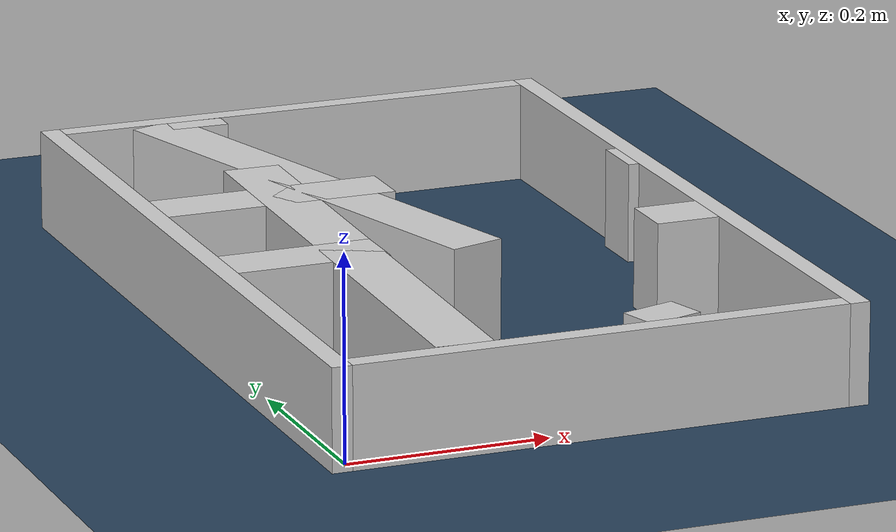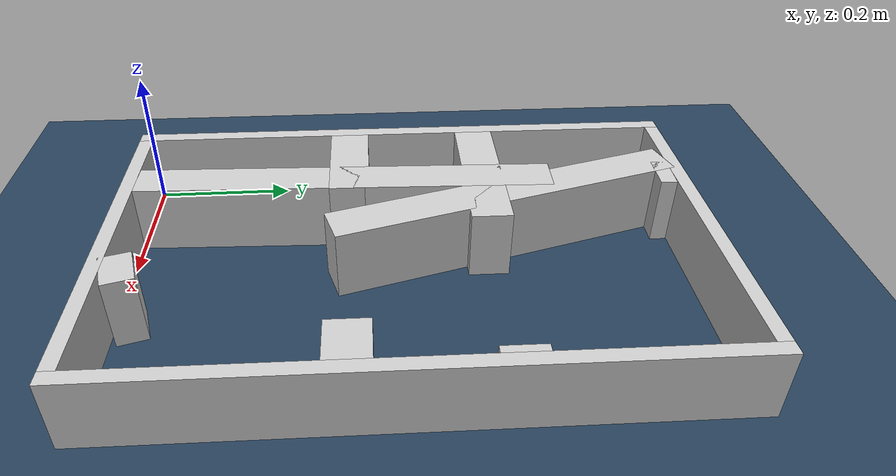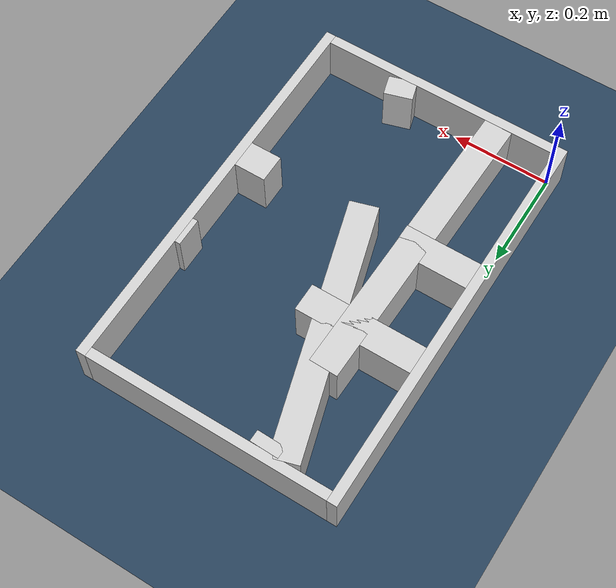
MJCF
<?xml version="1.0" ?>
<mujoco model="generated_real_template">
  <compiler angle="degree"/>
  <option timestep="0.002" integrator="implicitfast" iterations="100" cone="elliptic"/>
  <default>
    <geom density="1"/>
  </default>
  <asset>
    <texture builtin="gradient" height="3072" rgb1="0.3 0.5 0.7" rgb2="0 0 0" type="skybox" width="512"/>
    <texture builtin="checker" height="300" mark="edge" markrgb="0.8 0.8 0.8" name="groundplane" rgb1="0.2 0.3 0.4" rgb2="0.1 0.2 0.3" type="2d" width="300"/>
    <material name="groundplane" reflectance="0.2" texrepeat="5 5" texture="groundplane" texuniform="true"/>
  </asset>
  <worldbody>
    <light dir="0 0 -1" directional="true" pos="0 0 1.5"/>
    <geom name="floor" type="plane" condim="4" friction="0.5 0.005 0.001" material="groundplane" size="0 0 0.05"/>
    <body name="walls">
      <geom name="wall_boundary_left" type="box" condim="4" friction="1.0 0.005 0.0001" rgba="0.8 0.8 0.8 1" pos="-0.010000 0.387500 0.050000" euler="0 0 0.000000" size="0.010000 0.407500 0.050000"/>
      <geom name="wall_boundary_right" type="box" condim="4" friction="1.0 0.005 0.0001" rgba="0.8 0.8 0.8 1" pos="0.500000 0.387500 0.050000" euler="0 0 0.000000" size="0.010000 0.407500 0.050000"/>
      <geom name="wall_boundary_bottom" type="box" condim="4" friction="1.0 0.005 0.0001" rgba="0.8 0.8 0.8 1" pos="0.245000 -0.010000 0.050000" euler="0 0 0.000000" size="0.245000 0.010000 0.050000"/>
      <geom name="wall_boundary_top" type="box" condim="4" friction="1.0 0.005 0.0001" rgba="0.8 0.8 0.8 1" pos="0.245000 0.785000 0.050000" euler="0 0 0.000000" size="0.245000 0.010000 0.050000"/>
      <geom name="wall_inner_1_1" type="box" condim="4" friction="1.0 0.005 0.0001" rgba="0.8 0.8 0.8 1" pos="0.134928 0.763225 0.050000" euler="0 0 -91.390259" size="0.011779 0.028500 0.050000"/>
      <geom name="wall_inner_1_2" type="box" condim="4" friction="1.0 0.005 0.0001" rgba="0.8 0.8 0.8 1" pos="0.123652 0.298604 0.050000" euler="0 0 -91.390259" size="0.298692 0.028500 0.050000"/>
      <geom name="wall_inner_2_1" type="box" condim="4" friction="1.0 0.005 0.0001" rgba="0.8 0.8 0.8 1" pos="0.116692 0.498531 0.050000" euler="0 0 0.000000" size="0.116692 0.028500 0.050000"/>
      <geom name="wall_inner_2_2" type="box" condim="4" friction="1.0 0.005 0.0001" rgba="0.8 0.8 0.8 1" pos="0.484476 0.498531 0.050000" euler="0 0 0.000000" size="0.005524 0.028500 0.050000"/>
      <geom name="wall_inner_3_1" type="box" condim="4" friction="1.0 0.005 0.0001" rgba="0.8 0.8 0.8 1" pos="0.076425 0.304906 0.050000" euler="0 0 0.000000" size="0.076425 0.028500 0.050000"/>
      <geom name="wall_inner_3_2" type="box" condim="4" friction="1.0 0.005 0.0001" rgba="0.8 0.8 0.8 1" pos="0.457985 0.304906 0.050000" euler="0 0 0.000000" size="0.032015 0.028500 0.050000"/>
      <geom name="wall_inner_4_1" type="box" condim="4" friction="1.0 0.005 0.0001" rgba="0.8 0.8 0.8 1" pos="0.318605 0.020049 0.050000" euler="0 0 106.469122" size="0.020907 0.028500 0.050000"/>
      <geom name="wall_inner_4_2" type="box" condim="4" friction="1.0 0.005 0.0001" rgba="0.8 0.8 0.8 1" pos="0.168662 0.527254 0.050000" euler="0 0 106.469122" size="0.258345 0.028500 0.050000"/>
    </body>
  </worldbody>
</mujoco>
